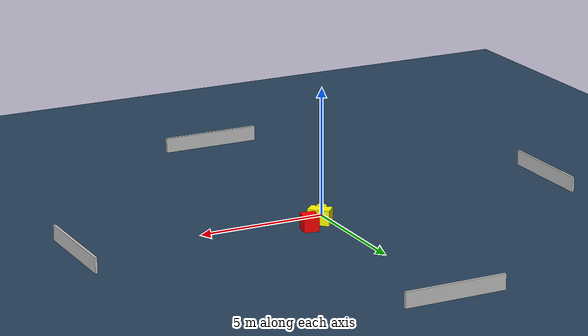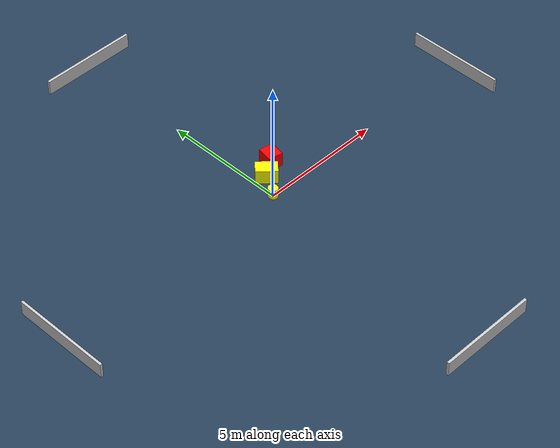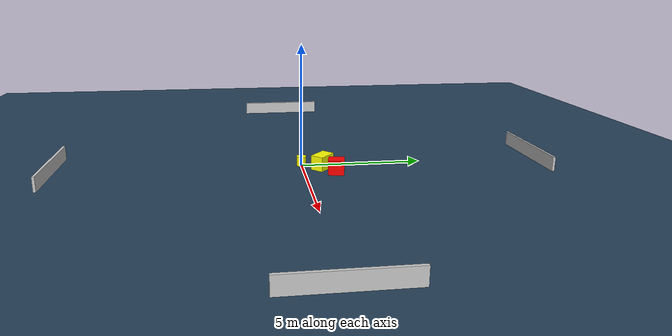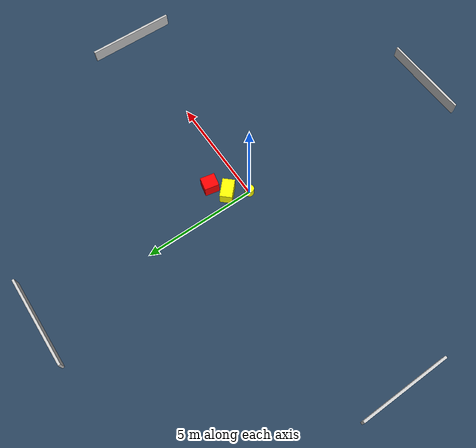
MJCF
<?xml version="1.0" ?>
<mujoco model="generated_environment">
  <option timestep="0.01" integrator="RK4" cone="elliptic"/>
  <default>
    <geom density="1"/>
  </default>
  <asset>
    <texture builtin="gradient" height="3072" name="skybox" rgb1="0.3 0.5 0.7" rgb2="0 0 0" type="skybox" width="512"/>
    <texture builtin="checker" height="300" name="groundplane" rgb1="0.2 0.3 0.4" rgb2="0.1 0.2 0.3" type="2d" width="300"/>
    <material name="groundplane" reflectance="0.2" texrepeat="5 5" texture="groundplane"/>
  </asset>
  <worldbody>
    <light dir="0 0 -1" directional="true" pos="0 0 1.5"/>
    <geom condim="3" friction="0.5 0.005 0.001" material="groundplane" name="floor" pos="0 0 0" size="0 0 0.05" type="plane"/>
    <body name="walls">
      <geom name="wall_1" condim="4" pos="-10.0 0.0 0.3" rgba="0.800000011920929 0.800000011920929 0.800000011920929 1.0" size="0.05 2.0 0.3" type="box"/>
      <geom name="wall_2" condim="4" pos="10.0 0.0 0.3" rgba="0.800000011920929 0.800000011920929 0.800000011920929 1.0" size="0.05 2.0 0.3" type="box"/>
      <geom name="wall_3" condim="4" pos="0.0 -10.0 0.3" rgba="0.800000011920929 0.800000011920929 0.800000011920929 1.0" size="2.0 0.05 0.3" type="box"/>
      <geom name="wall_4" condim="4" pos="0.0 10.0 0.3" rgba="0.800000011920929 0.800000011920929 0.800000011920929 1.0" size="2.0 0.05 0.3" type="box"/>
    </body>
    <body name="robot">
      <joint name="joint_x" type="slide" pos="0 0 0" axis="1 0 0"/>
      <joint name="joint_y" type="slide" pos="0 0 0" axis="0 1 0"/>
      <geom name="robot" type="cylinder" pos="0.0 0.0 0.2" size="0.2 0.2 0.0" mass="5.0" friction="1.0 0.005 0.0001" condim="4" rgba="1.0 1.0 0.0 1.0"/>
    </body>
    <body name="obstacle_1_movable">
      <geom name="obstacle_1_movable" condim="4" pos="0.4830668102644778 0.8085809732163735 0.3" euler="0 0 136.9667508129724" friction="0.0 0.005 0.001" rgba="1.0 1.0 0.0 1.0" size="0.42344021701549306 0.27060117256165267 0.3" type="box" mass="0.1"/>
      <joint type="free"/>
    </body>
    <body name="obstacle_2_static">
      <geom name="obstacle_2_static" condim="4" pos="1.1638097907567886 1.2617531419382286 0.3" euler="0 0 78.40470431418703" friction="0.0 0.005 0.001" rgba="1.0 0.0 0.0 1.0" size="0.322052183706936 0.295460989057305 0.3" type="box"/>
    </body>
  </worldbody>
  <actuator>
    <motor name="actuator_x" joint="joint_x" gear="1" ctrlrange="-1 1"/>
    <motor name="actuator_y" joint="joint_y" gear="1" ctrlrange="-1 1"/>
  </actuator>
</mujoco>
